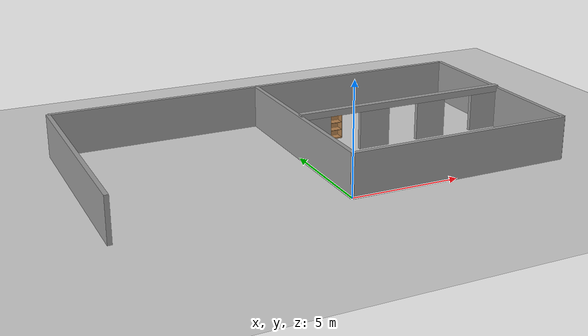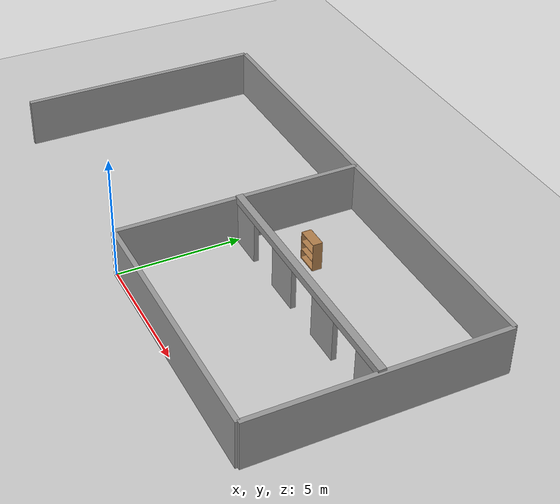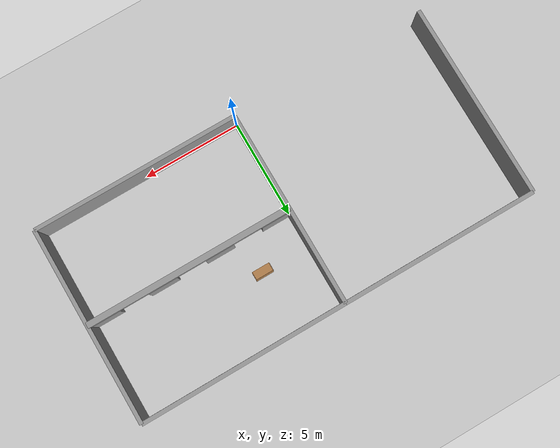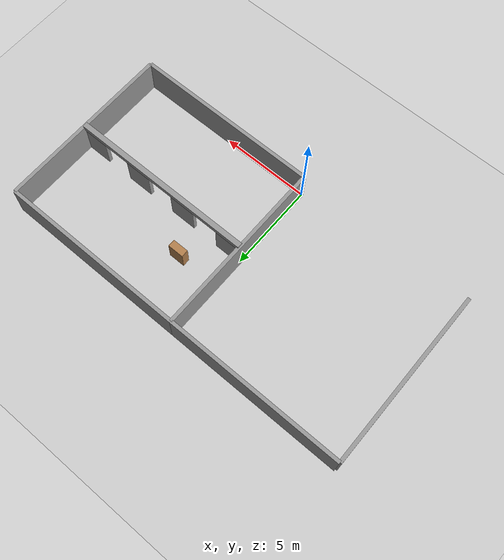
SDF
<sdf version="1.4">
 <world name="default">
  <model name="ground_plane">
   <static>1</static>
   <link name="link">
    <collision name="collision">
     <geometry><plane><normal>0 0 1</normal><size>100 100</size></plane></geometry>
     <surface><friction><ode><mu>100</mu><mu2>50</mu2></ode></friction></surface>
    </collision>
    <visual name="visual">
     <cast_shadows>0</cast_shadows>
     <geometry><plane><normal>0 0 1</normal><size>100 100</size></plane></geometry>
     <material>
      <script><uri>file://media/materials/scripts/gazebo.material</uri><name>Gazebo/Grey</name></script>
     </material>
    </visual>
    <velocity_decay><linear>0</linear><angular>0</angular></velocity_decay>
   </link>
  </model>
  <model name="3_doors">
   <static>1</static>
   <link name="wall_link_0">
    <pose>5.25 0 1 0 -0 -3.14159</pose>
    <collision name="wall_link_0_geom"><geometry><box><size>10.5 0.2 2</size></box></geometry></collision>
    <visual name="wall_link_0_visual">
     <geometry><box><size>10.5 0.2 2</size></box></geometry>
     <material>
      <script><uri>file://media/materials/scripts/gazebo.material</uri><name>Gazebo/Grey</name></script>
     </material>
    </visual>
    <velocity_decay><linear>0</linear><angular>0</angular></velocity_decay>
   </link>
   <link name="wall_link_1">
    <pose>10.5 5 1 0 0 -1.5708</pose>
    <collision name="wall_link_1_geom"><geometry><box><size>10 0.2 2</size></box></geometry></collision>
    <visual name="wall_link_1_visual">
     <geometry><box><size>10 0.2 2</size></box></geometry>
     <material>
      <script><uri>file://media/materials/scripts/gazebo.material</uri><name>Gazebo/Grey</name></script>
     </material>
    </visual>
    <velocity_decay><linear>0</linear><angular>0</angular></velocity_decay>
   </link>
   <link name="wall_link_2">
    <pose>5.25 10 1 0 -0 0</pose>
    <collision name="wall_link_2_geom"><geometry><box><size>10.5 0.2 2</size></box></geometry></collision>
    <visual name="wall_link_2_visual">
     <geometry><box><size>10.5 0.2 2</size></box></geometry>
     <material>
      <script><uri>file://media/materials/scripts/gazebo.material</uri><name>Gazebo/Grey</name></script>
     </material>
    </visual>
    <velocity_decay><linear>0</linear><angular>0</angular></velocity_decay>
   </link>
   <link name="wall_link_3">
    <pose>0 5 1 0 -0 1.5708</pose>
    <collision name="wall_link_3_geom"><geometry><box><size>10 0.2 2</size></box></geometry></collision>
    <visual name="wall_link_3_visual">
     <geometry><box><size>10 0.2 2</size></box></geometry>
     <material>
      <script><uri>file://media/materials/scripts/gazebo.material</uri><name>Gazebo/Grey</name></script>
     </material>
    </visual>
    <velocity_decay><linear>0</linear><angular>0</angular></velocity_decay>
   </link>
   <link name="wall_link_4">
    <pose>-5 10 1 0 -0 0</pose>
    <collision name="wall_link_4_geom"><geometry><box><size>10 0.2 2</size></box></geometry></collision>
    <visual name="wall_link_4_visual">
     <geometry><box><size>10 0.2 2</size></box></geometry>
     <material>
      <script><uri>file://media/materials/scripts/gazebo.material</uri><name>Gazebo/Grey</name></script>
     </material>
    </visual>
    <velocity_decay><linear>0</linear><angular>0</angular></velocity_decay>
   </link>
   <link name="wall_link_5">
    <pose>-10 5 1 0 -0 1.5708</pose>
    <collision name="wall_link_5_geom"><geometry><box><size>10 0.2 2</size></box></geometry></collision>
    <visual name="wall_link_5_visual">
     <geometry><box><size>10 0.2 2</size></box></geometry>
     <material>
      <script><uri>file://media/materials/scripts/gazebo.material</uri><name>Gazebo/Grey</name></script>
     </material>
    </visual>
    <velocity_decay><linear>0</linear><angular>0</angular></velocity_decay>
   </link>
   <link name="wall_link_6">
    <pose>0 5 1 0 -0 0</pose>
    <collision name="wall_link_6_geom"><geometry><box><size>0.01 0.2 2</size></box></geometry></collision>
    <visual name="wall_link_6_visual">
     <geometry><box><size>0.01 0.2 2</size></box></geometry>
     <material>
      <script><uri>file://media/materials/scripts/gazebo.material</uri><name>Gazebo/Grey</name></script>
     </material>
    </visual>
    <velocity_decay><linear>0</linear><angular>0</angular></velocity_decay>
   </link>
   <link name="wall_link_7">
    <pose>0.75 5 1 0 -0 -3.14159</pose>
    <collision name="wall_link_7_geom"><geometry><box><size>1.5 0.2 2</size></box></geometry></collision>
    <visual name="wall_link_7_visual">
     <geometry><box><size>1.5 0.2 2</size></box></geometry>
     <material>
      <script><uri>file://media/materials/scripts/gazebo.material</uri><name>Gazebo/Grey</name></script>
     </material>
    </visual>
    <velocity_decay><linear>0</linear><angular>0</angular></velocity_decay>
   </link>
   <link name="wall_link_8">
    <pose>3.75 5 1 0 -0 -3.14159</pose>
    <collision name="wall_link_8_geom"><geometry><box><size>1.5 0.2 2</size></box></geometry></collision>
    <visual name="wall_link_8_visual">
     <geometry><box><size>1.5 0.2 2</size></box></geometry>
     <material>
      <script><uri>file://media/materials/scripts/gazebo.material</uri><name>Gazebo/Grey</name></script>
     </material>
    </visual>
    <velocity_decay><linear>0</linear><angular>0</angular></velocity_decay>
   </link>
   <link name="wall_link_9">
    <pose>6.75 5 1 0 -0 -3.14159</pose>
    <collision name="wall_link_9_geom"><geometry><box><size>1.5 0.2 2</size></box></geometry></collision>
    <visual name="wall_link_9_visual">
     <geometry><box><size>1.5 0.2 2</size></box></geometry>
     <material>
      <script><uri>file://media/materials/scripts/gazebo.material</uri><name>Gazebo/Grey</name></script>
     </material>
    </visual>
    <velocity_decay><linear>0</linear><angular>0</angular></velocity_decay>
   </link>
   <link name="wall_link_10">
    <pose>9.75 5 1 0 -0 -3.14159</pose>
    <collision name="wall_link_10_geom"><geometry><box><size>1.5 0.2 2</size></box></geometry></collision>
    <visual name="wall_link_10_visual">
     <geometry><box><size>1.5 0.2 2</size></box></geometry>
     <material>
      <script><uri>file://media/materials/scripts/gazebo.material</uri><name>Gazebo/Grey</name></script>
     </material>
    </visual>
    <velocity_decay><linear>0</linear><angular>0</angular></velocity_decay>
   </link>
   <link name="wall_link_11">
    <pose>5.25 5 1.95 0 -0 -3.14159</pose>
    <collision name="wall_link_11_geom"><geometry><box><size>10.5 0.2 0.3</size></box></geometry></collision>
    <visual name="wall_link_11_visual">
     <geometry><box><size>10.5 0.3 0.3</size></box></geometry>
     <material>
      <script><uri>file://media/materials/scripts/gazebo.material</uri><name>Gazebo/Grey</name></script>
     </material>
    </visual>
    <velocity_decay><linear>0</linear><angular>0</angular></velocity_decay>
   </link>
  </model>
  <model name="bookshelf">
   <static>1</static>
   <link name="link">
    <inertial><mass>1</mass></inertial>
    <collision name="back">
     <pose>0 0.005 0.6 0 -0 0</pose>
     <geometry><box><size>0.9 0.01 1.2</size></box></geometry>
    </collision>
    <visual name="visual1">
     <pose>0 0.005 0.6 0 -0 0</pose>
     <geometry><box><size>0.9 0.01 1.2</size></box></geometry>
     <material>
      <script><uri>file://media/materials/scripts/gazebo.material</uri><name>Gazebo/Wood</name></script>
     </material>
    </visual>
    <collision name="left_side">
     <pose>0.45 -0.195 0.6 0 -0 0</pose>
     <geometry><box><size>0.02 0.4 1.2</size></box></geometry>
    </collision>
    <visual name="visual2">
     <pose>0.45 -0.195 0.6 0 -0 0</pose>
     <geometry><box><size>0.02 0.4 1.2</size></box></geometry>
     <material>
      <script><uri>file://media/materials/scripts/gazebo.material</uri><name>Gazebo/Wood</name></script>
     </material>
    </visual>
    <collision name="right_side">
     <pose>-0.45 -0.195 0.6 0 -0 0</pose>
     <geometry><box><size>0.02 0.4 1.2</size></box></geometry>
    </collision>
    <visual name="visual3">
     <pose>-0.45 -0.195 0.6 0 -0 0</pose>
     <geometry><box><size>0.02 0.4 1.2</size></box></geometry>
     <material>
      <script><uri>file://media/materials/scripts/gazebo.material</uri><name>Gazebo/Wood</name></script>
     </material>
    </visual>
    <collision name="bottom">
     <pose>0 -0.195 0.03 0 -0 0</pose>
     <geometry><box><size>0.88 0.4 0.06</size></box></geometry>
    </collision>
    <visual name="visual4">
     <pose>0 -0.195 0.03 0 -0 0</pose>
     <geometry><box><size>0.88 0.4 0.06</size></box></geometry>
     <material>
      <script><uri>file://media/materials/scripts/gazebo.material</uri><name>Gazebo/Wood</name></script>
     </material>
    </visual>
    <collision name="top">
     <pose>0 -0.195 1.19 0 -0 0</pose>
     <geometry><box><size>0.88 0.4 0.02</size></box></geometry>
    </collision>
    <visual name="visual5">
     <pose>0 -0.195 1.19 0 -0 0</pose>
     <geometry><box><size>0.88 0.4 0.02</size></box></geometry>
     <material>
      <script><uri>file://media/materials/scripts/gazebo.material</uri><name>Gazebo/Wood</name></script>
     </material>
    </visual>
    <collision name="low_shelf">
     <pose>0 -0.195 0.43 0 -0 0</pose>
     <geometry><box><size>0.88 0.4 0.02</size></box></geometry>
    </collision>
    <visual name="visual6">
     <pose>0 -0.195 0.43 0 -0 0</pose>
     <geometry><box><size>0.88 0.4 0.02</size></box></geometry>
     <material>
      <script><uri>file://media/materials/scripts/gazebo.material</uri><name>Gazebo/Wood</name></script>
     </material>
    </visual>
    <collision name="high_shelf">
     <pose>0 -0.195 0.8 0 -0 0</pose>
     <geometry><box><size>0.88 0.4 0.02</size></box></geometry>
    </collision>
    <visual name="visual7">
     <pose>0 -0.195 0.8 0 -0 0</pose>
     <geometry><box><size>0.88 0.4 0.02</size></box></geometry>
     <material>
      <script><uri>file://media/materials/scripts/gazebo.material</uri><name>Gazebo/Wood</name></script>
     </material>
    </visual>
    <velocity_decay><linear>0</linear><angular>0</angular></velocity_decay>
   </link>
   <pose>2.48309 7 0 0 -0 0</pose>
  </model>
 </world>
</sdf>
